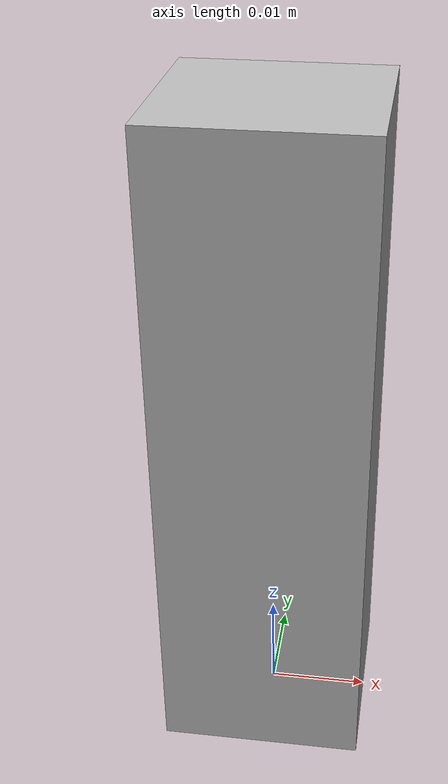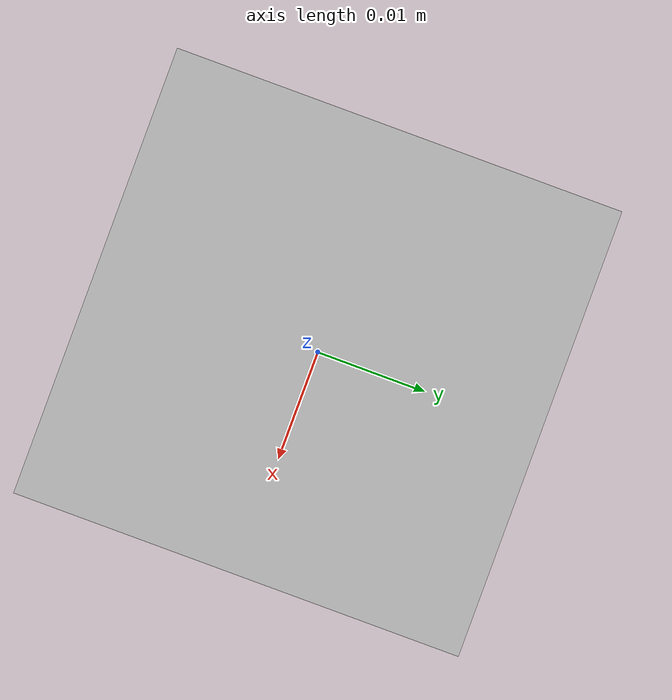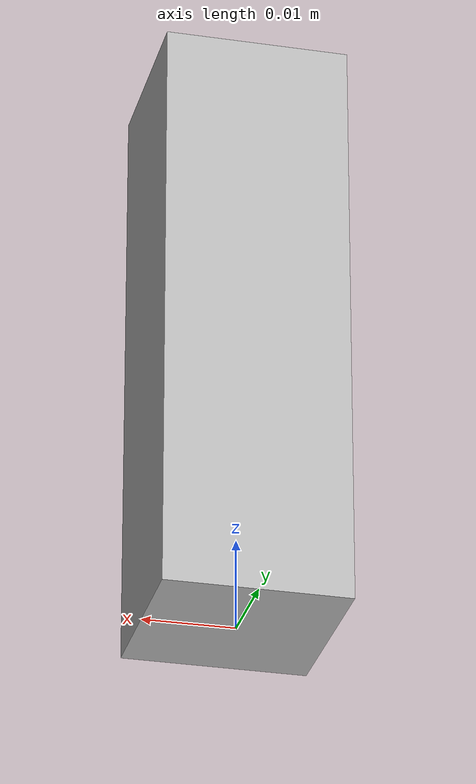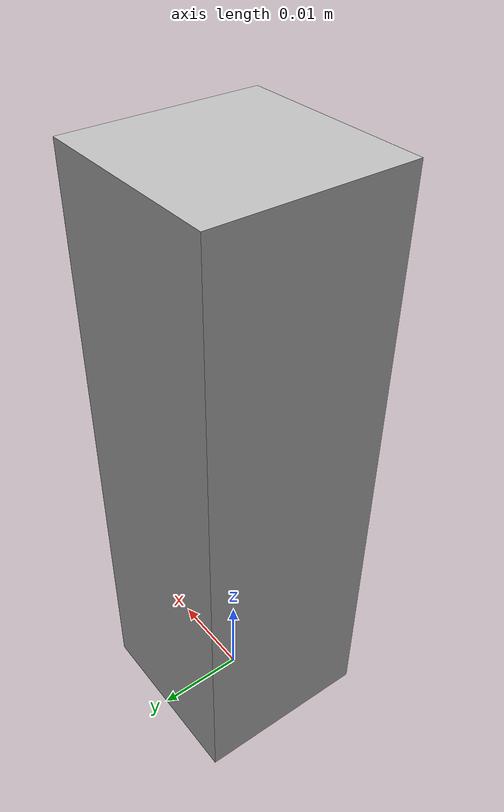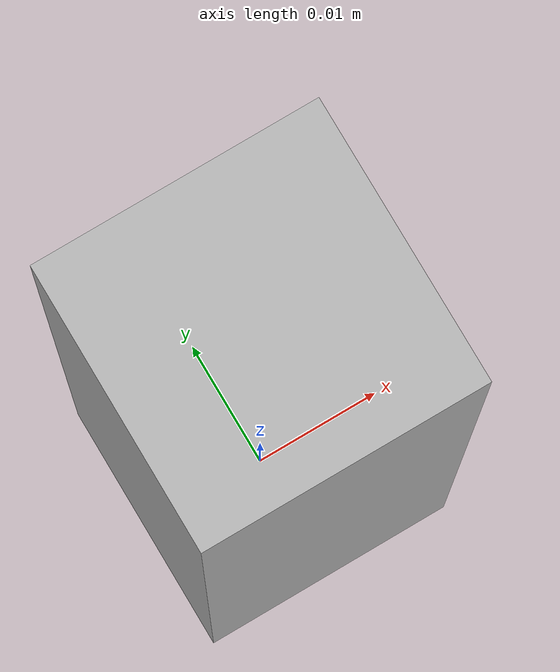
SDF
<?xml version="1.0" ?>
<sdf version="1.5">
  <model name="peg_cube">
    <link name="link">
      <pose>0 0 0 0 0 0</pose>
      <inertial>
        <mass>.1</mass>
        <inertia>
          <ixx>0.000001</ixx>
          <ixy>0</ixy>
          <ixz>0</ixz>
          <iyy>0.000001</iyy>
          <iyz>0</iyz>
          <izz>0.000001</izz>
        </inertia>
      </inertial>

      <collision name="collision">
        <geometry>
          <mesh>
            <uri>model://peg_cube/meshes/peg-cube.stl</uri>
              <scale>1.0 1.0 1.0</scale>
          </mesh>
        </geometry>
        <surface>
          <contact>
            <!-- Red Pine coefficients for longitudinal axis of the wood
                 according to:
                 http://www.fpl.fs.fed.us/documnts/fplgtr/fplgtr113/ch04.pdf -->
            <poissons_ratio>0.347</poissons_ratio>
            <elastic_modulus>8.8e+09</elastic_modulus>
            <ode>
              <kp>100000</kp>
              <kd>100</kd>
              <max_vel>100.0</max_vel>
              <min_depth>0.001</min_depth>
            </ode>
          </contact>
          <friction>
            <torsional>
              <coefficient>1.0</coefficient>
              <use_patch_radius>0</use_patch_radius>
              <surface_radius>0.01</surface_radius>
            </torsional>
          </friction>
        </surface>
      </collision>

      <visual name="visual">
        <geometry>
          <mesh>
            <uri>model://peg_cube/meshes/peg-cube.stl</uri>
              <scale>1.0 1.0 1.0</scale>
          </mesh>
        </geometry>
      </visual>

    </link>
  </model>
</sdf>
